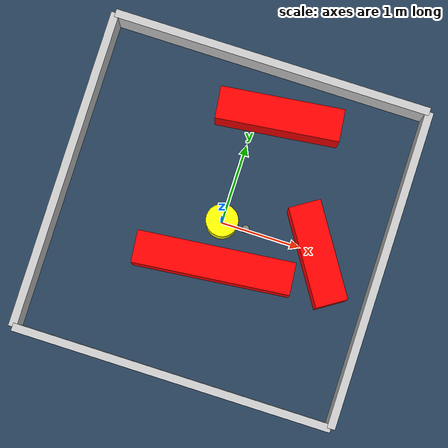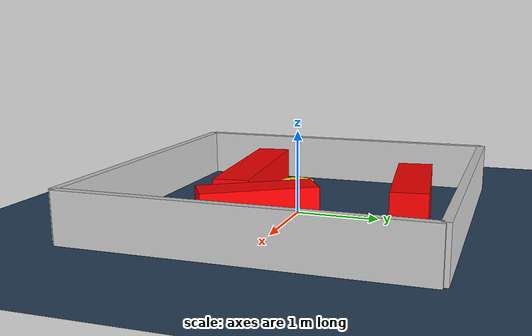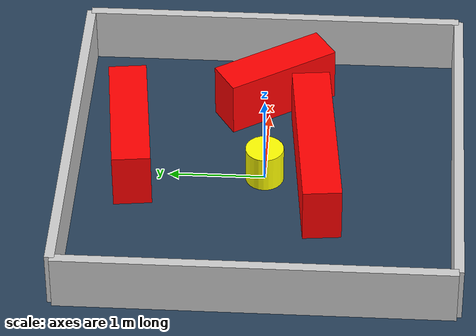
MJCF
<?xml version="1.0" ?>
<mujoco model="generated_environment">
  <option timestep="0.01" integrator="RK4" cone="elliptic"/>
  <default>
    <geom density="1"/>
  </default>
  <asset>
    <texture builtin="gradient" height="3072" rgb1="0.3 0.5 0.7" rgb2="0 0 0" type="skybox" width="512"/>
    <texture builtin="checker" height="300" mark="edge" markrgb="0.8 0.8 0.8" name="groundplane" rgb1="0.2 0.3 0.4" rgb2="0.1 0.2 0.3" type="2d" width="300"/>
    <material name="groundplane" reflectance="0.2" texrepeat="5 5" texture="groundplane" texuniform="true"/>
    <material name="robot" rgba="0.0 1.0 0.0 1"/>
  </asset>
  <worldbody>
    <light dir="0 0 -1" directional="true" pos="0 0 1.5"/>
    <geom condim="4" friction="1.0 0.005 0.001" material="groundplane" name="floor" size="0 0 0.05" type="plane"/>
    <body name="walls">
      <geom name="wall_1" condim="4" pos="-2.0 0.0 0.3" rgba="0.800000011920929 0.800000011920929 0.800000011920929 1.0" size="0.05 2.0 0.3" type="box"/>
      <geom name="wall_2" condim="4" pos="2.0 0.0 0.3" rgba="0.800000011920929 0.800000011920929 0.800000011920929 1.0" size="0.05 2.0 0.3" type="box"/>
      <geom name="wall_3" condim="4" pos="0.0 -2.0 0.3" rgba="0.800000011920929 0.800000011920929 0.800000011920929 1.0" size="2.0 0.05 0.3" type="box"/>
      <geom name="wall_4" condim="4" pos="0.0 2.0 0.3" rgba="0.800000011920929 0.800000011920929 0.800000011920929 1.0" size="2.0 0.05 0.3" type="box"/>
    </body>
    <body name="robot">
      <joint name="joint_x" type="slide" pos="0 0 0" axis="1 0 0"/>
      <joint name="joint_y" type="slide" pos="0 0 0" axis="0 1 0"/>
      <geom name="robot" type="sphere" pos="0.3 0.0 0.2" size="0.05" mass="5." friction="1.0 0.005 0.0001" condim="4" rgba="0.5 0.5 0.5 1.0"/>
      <site name="sensor_ball"/>
    </body>
    <body name="obstacle_movable_1">
      <geom name="obstacle_movable_1" condim="4" pos="0.0 0.0 0.2" euler="0 0 0.0" friction="1.0 0.005 0.001" rgba="1.0 1.0 0.0 1.0" size="0.2 0.2 0.0" type="cylinder" mass="0.1"/>
      <joint type="free"/>
    </body>
    <body name="obstacle_2_static">
      <geom name="obstacle_2_static" condim="4" pos="0.06302286061028539 -0.5323293890678016 0.3" euler="0 0 5.811802271883306" friction="1.0 0.005 0.001" rgba="1 0 0 1" size="0.9748253566418879 0.2 0.3" type="box"/>
    </body>
    <body name="obstacle_3_static">
      <geom name="obstacle_3_static" condim="4" pos="0.2802084897631225 1.4294732599004722 0.3" euler="0 0 186.69398463253287" friction="1.0 0.005 0.001" rgba="1 0 0 1" size="0.7667937004601859 0.2 0.3" type="box"/>
    </body>
    <body name="obstacle_4_static">
      <geom name="obstacle_4_static" condim="4" pos="1.2280137134991933 -0.046568199186622694 0.3" euler="0 0 302.6732323627757" friction="1.0 0.005 0.001" rgba="1 0 0 1" size="0.6262776325093622 0.2 0.3" type="box"/>
    </body>
  </worldbody>
  <actuator>
    <motor name="actuator_x" joint="joint_x" gear="1" ctrlrange="-1 1"/>
    <motor name="actuator_y" joint="joint_y" gear="1" ctrlrange="-1 1"/>
  </actuator>
</mujoco>
